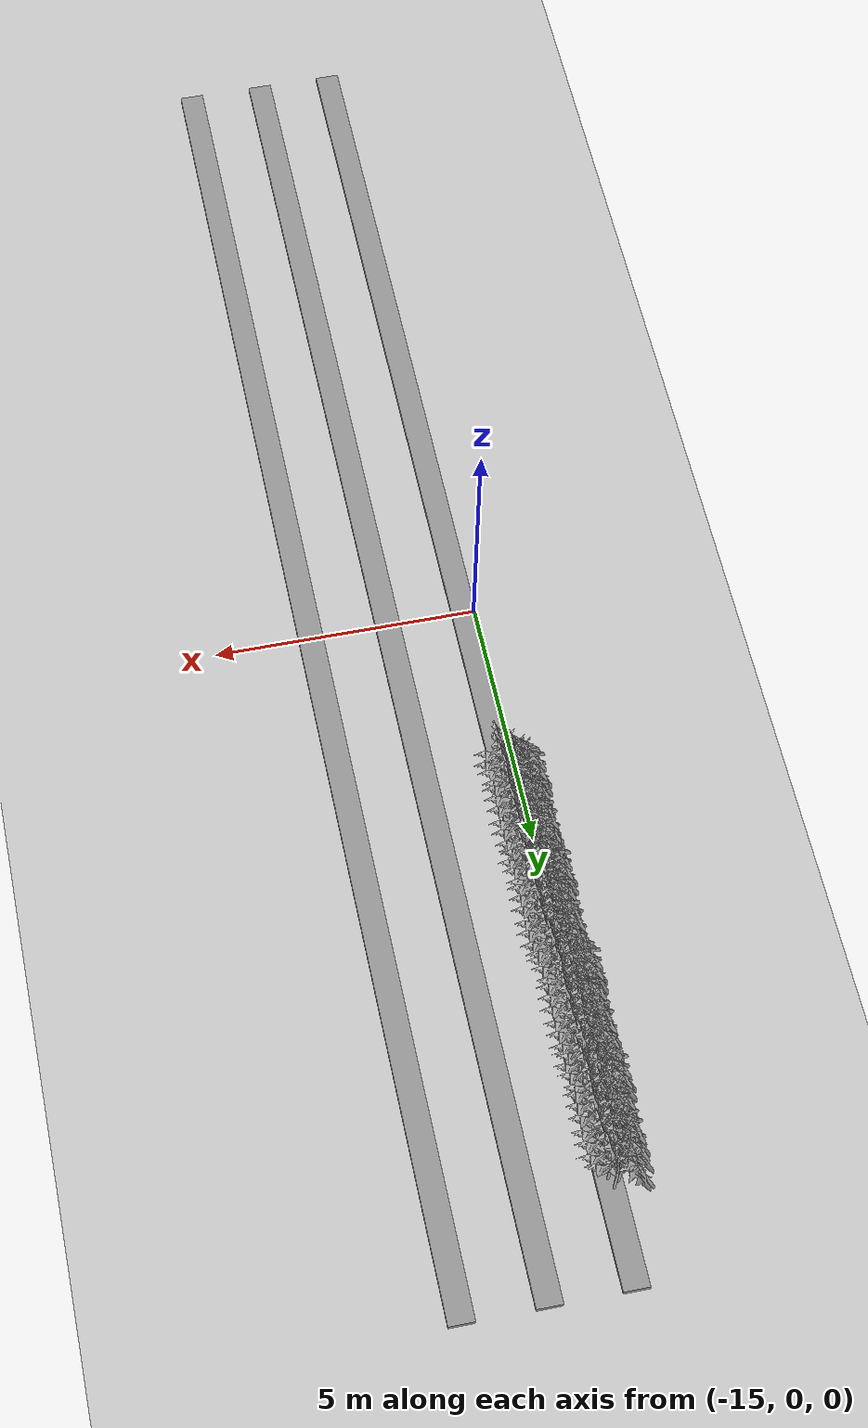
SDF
<sdf version="1.6">
 <world name="default">
  <model name="ground_plane">
   <static>1</static>
   <link name="link">
    <collision name="collision">
     <geometry><plane><normal>0 0 1</normal><size>100 100</size></plane></geometry>
     <surface>
      <contact><collide_bitmask>65535</collide_bitmask></contact>
      <friction><ode><mu>100</mu><mu2>50</mu2></ode></friction>
     </surface>
    </collision>
    <visual name="visual">
     <cast_shadows>0</cast_shadows>
     <geometry><plane><normal>0 0 1</normal><size>100 100</size></plane></geometry>
     <material>
      <script><uri>file://media/materials/scripts/gazebo.material</uri><name>Gazebo/Grey</name></script>
     </material>
    </visual>
   </link>
  </model>
  <model name="Box_24x15W_clone_0">
   <link name="Wall">
    <pose>0 0 0.1985 0 -0 0</pose>
    <inertial>
     <mass>5</mass>
     <inertia><ixx>0.1022</ixx><iyy>0.2197</iyy><izz>0.1905</izz><ixy>0</ixy><ixz>0</ixz><iyz>0</iyz></inertia>
    </inertial>
    <collision name="Wall_Collision">
     <geometry><box><size>0.470639 27.6098 0.091294</size></box></geometry>
    </collision>
    <visual name="Wall_Visual">
     <geometry><box><size>0.470639 27.6098 0.091294</size></box></geometry>
     <material>
      <script><uri>file://media/materials/scripts/gazebo.material</uri><name>Gazebo/Grey</name></script>
      <ambient>1 1 1 1</ambient>
     </material>
    </visual>
   </link>
   <static>1</static>
   <pose>-14.7891 -0.233565 -0.139926 0 -0 0</pose>
  </model>
  <model name="Box_24x15W_clone_1">
   <link name="Wall">
    <pose>0 0 0.1985 0 -0 0</pose>
    <inertial>
     <mass>5</mass>
     <inertia><ixx>0.1022</ixx><iyy>0.2197</iyy><izz>0.1905</izz><ixy>0</ixy><ixz>0</ixz><iyz>0</iyz></inertia>
    </inertial>
    <collision name="Wall_Collision">
     <geometry><box><size>0.470639 27.6098 0.091294</size></box></geometry>
    </collision>
    <visual name="Wall_Visual">
     <geometry><box><size>0.470639 27.6098 0.091294</size></box></geometry>
     <material>
      <script><uri>file://media/materials/scripts/gazebo.material</uri><name>Gazebo/Grey</name></script>
      <ambient>1 1 1 1</ambient>
     </material>
    </visual>
   </link>
   <static>1</static>
   <pose>-13.3102 -0.233565 -0.139926 0 -0 0</pose>
  </model>
  <model name="Box_24x15W_clone_2">
   <link name="Wall">
    <pose>0 0 0.1985 0 -0 0</pose>
    <inertial>
     <mass>5</mass>
     <inertia><ixx>0.1022</ixx><iyy>0.2197</iyy><izz>0.1905</izz><ixy>0</ixy><ixz>0</ixz><iyz>0</iyz></inertia>
    </inertial>
    <collision name="Wall_Collision">
     <geometry><box><size>0.470639 27.6098 0.091294</size></box></geometry>
    </collision>
    <visual name="Wall_Visual">
     <geometry><box><size>0.470639 27.6098 0.091294</size></box></geometry>
     <material>
      <script><uri>file://media/materials/scripts/gazebo.material</uri><name>Gazebo/Grey</name></script>
      <ambient>1 1 1 1</ambient>
     </material>
    </visual>
   </link>
   <static>1</static>
   <pose>-11.8212 -0.233565 -0.139926 0 -0 0</pose>
  </model>
  <model name="MIddle_Plant_3_4">
   <model name="MIddle_Plant_1">
    <model name="tomato_plant_big">
     <static>1</static>
     <link name="link">
      <collision name="collision">
       <pose>0 0 0 1.5708 -0 0</pose>
       <geometry><mesh><scale>0.5 0.6 0.5</scale><uri>model://stick/meshes/stick.dae</uri></mesh></geometry>
      </collision>
      <visual name="visual">
       <geometry>
        <mesh><scale>5e-06 5e-06 7e-06</scale><uri>model://tomato_plant_big/meshes/tomato-plant.dae</uri></mesh>
       </geometry>
      </visual>
     </link>
     <pose>-0.144318 -0.693607 -0 0 -0 0</pose>
    </model>
    <model name="tomato_plant_big_0">
     <static>1</static>
     <link name="link">
      <collision name="collision">
       <pose>0 0 0 1.5708 -0 0</pose>
       <geometry><mesh><scale>0.5 0.6 0.5</scale><uri>model://stick/meshes/stick.dae</uri></mesh></geometry>
      </collision>
      <visual name="visual">
       <geometry>
        <mesh><scale>5e-06 5e-06 7e-06</scale><uri>model://tomato_plant_big/meshes/tomato-plant.dae</uri></mesh>
       </geometry>
      </visual>
     </link>
     <pose>-0.11784 -0.519827 0 0 -0 0</pose>
    </model>
    <model name="tomato_plant_big_1">
     <static>1</static>
     <link name="link">
      <collision name="collision">
       <pose>0 0 0 1.5708 -0 0</pose>
       <geometry><mesh><scale>0.5 0.6 0.5</scale><uri>model://stick/meshes/stick.dae</uri></mesh></geometry>
      </collision>
      <visual name="visual">
       <geometry>
        <mesh><scale>5e-06 5e-06 7e-06</scale><uri>model://tomato_plant_big/meshes/tomato-plant.dae</uri></mesh>
       </geometry>
      </visual>
     </link>
     <pose>0.073755 -0.247584 0 0 -0 0</pose>
    </model>
    <model name="tomato_plant_big_10">
     <static>1</static>
     <link name="link">
      <collision name="collision">
       <pose>0 0 0 1.5708 -0 0</pose>
       <geometry><mesh><scale>0.5 0.6 0.5</scale><uri>model://stick/meshes/stick.dae</uri></mesh></geometry>
      </collision>
      <visual name="visual">
       <geometry>
        <mesh><scale>5e-06 5e-06 7e-06</scale><uri>model://tomato_plant_big/meshes/tomato-plant.dae</uri></mesh>
       </geometry>
      </visual>
     </link>
     <pose>0.037052 1.07094 0 0 -0 0</pose>
    </model>
    <model name="tomato_plant_big_2">
     <static>1</static>
     <link name="link">
      <collision name="collision">
       <pose>0 0 0 1.5708 -0 0</pose>
       <geometry><mesh><scale>0.5 0.6 0.5</scale><uri>model://stick/meshes/stick.dae</uri></mesh></geometry>
      </collision>
      <visual name="visual">
       <geometry>
        <mesh><scale>5e-06 5e-06 7e-06</scale><uri>model://tomato_plant_big/meshes/tomato-plant.dae</uri></mesh>
       </geometry>
      </visual>
     </link>
     <pose>-0.076926 -0.131165 0 0 -0 0</pose>
    </model>
    <model name="tomato_plant_big_3">
     <static>1</static>
     <link name="link">
      <collision name="collision">
       <pose>0 0 0 1.5708 -0 0</pose>
       <geometry><mesh><scale>0.5 0.6 0.5</scale><uri>model://stick/meshes/stick.dae</uri></mesh></geometry>
      </collision>
      <visual name="visual">
       <geometry>
        <mesh><scale>5e-06 5e-06 7e-06</scale><uri>model://tomato_plant_big/meshes/tomato-plant.dae</uri></mesh>
       </geometry>
      </visual>
     </link>
     <pose>0.093714 -0.038386 0 0 -0 0</pose>
    </model>
    <model name="tomato_plant_big_4">
     <static>1</static>
     <link name="link">
      <collision name="collision">
       <pose>0 0 0 1.5708 -0 0</pose>
       <geometry><mesh><scale>0.5 0.6 0.5</scale><uri>model://stick/meshes/stick.dae</uri></mesh></geometry>
      </collision>
      <visual name="visual">
       <geometry>
        <mesh><scale>5e-06 5e-06 7e-06</scale><uri>model://tomato_plant_big/meshes/tomato-plant.dae</uri></mesh>
       </geometry>
      </visual>
     </link>
     <pose>0.103117 0.184356 0 0 -0 0</pose>
    </model>
    <model name="tomato_plant_big_5">
     <static>1</static>
     <link name="link">
      <collision name="collision">
       <pose>0 0 0 1.5708 -0 0</pose>
       <geometry><mesh><scale>0.5 0.6 0.5</scale><uri>model://stick/meshes/stick.dae</uri></mesh></geometry>
      </collision>
      <visual name="visual">
       <geometry>
        <mesh><scale>5e-06 5e-06 7e-06</scale><uri>model://tomato_plant_big/meshes/tomato-plant.dae</uri></mesh>
       </geometry>
      </visual>
     </link>
     <pose>-0.074883 0.301479 0 0 -0 0</pose>
    </model>
    <model name="tomato_plant_big_6">
     <static>1</static>
     <link name="link">
      <collision name="collision">
       <pose>0 0 0 1.5708 -0 0</pose>
       <geometry><mesh><scale>0.5 0.6 0.5</scale><uri>model://stick/meshes/stick.dae</uri></mesh></geometry>
      </collision>
      <visual name="visual">
       <geometry>
        <mesh><scale>5e-06 5e-06 7e-06</scale><uri>model://tomato_plant_big/meshes/tomato-plant.dae</uri></mesh>
       </geometry>
      </visual>
     </link>
     <pose>-0.096921 0.484007 0 0 -0 0</pose>
    </model>
    <model name="tomato_plant_big_7">
     <static>1</static>
     <link name="link">
      <collision name="collision">
       <pose>0 0 0 1.5708 -0 0</pose>
       <geometry><mesh><scale>0.5 0.6 0.5</scale><uri>model://stick/meshes/stick.dae</uri></mesh></geometry>
      </collision>
      <visual name="visual">
       <geometry>
        <mesh><scale>5e-06 5e-06 7e-06</scale><uri>model://tomato_plant_big/meshes/tomato-plant.dae</uri></mesh>
       </geometry>
      </visual>
     </link>
     <pose>0.107491 0.653976 0 0 -0 0</pose>
    </model>
    <model name="tomato_plant_big_8">
     <static>1</static>
     <link name="link">
      <collision name="collision">
       <pose>0 0 0 1.5708 -0 0</pose>
       <geometry><mesh><scale>0.5 0.6 0.5</scale><uri>model://stick/meshes/stick.dae</uri></mesh></geometry>
      </collision>
      <visual name="visual">
       <geometry>
        <mesh><scale>5e-06 5e-06 7e-06</scale><uri>model://tomato_plant_big/meshes/tomato-plant.dae</uri></mesh>
       </geometry>
      </visual>
     </link>
     <pose>-0.07985 0.768549 0 0 -0 0</pose>
    </model>
    <model name="tomato_plant_big_9">
     <static>1</static>
     <link name="link">
      <collision name="collision">
       <pose>0 0 0 1.5708 -0 0</pose>
       <geometry><mesh><scale>0.5 0.6 0.5</scale><uri>model://stick/meshes/stick.dae</uri></mesh></geometry>
      </collision>
      <visual name="visual">
       <geometry>
        <mesh><scale>5e-06 5e-06 7e-06</scale><uri>model://tomato_plant_big/meshes/tomato-plant.dae</uri></mesh>
       </geometry>
      </visual>
     </link>
     <pose>0.098361 0.890852 0 0 -0 0</pose>
    </model>
    <model name="tomato_plant_medium">
     <static>1</static>
     <link name="link">
      <collision name="collision">
       <pose>0 0 0 1.5708 -0 0</pose>
       <geometry><mesh><scale>0.5 0.5 0.5</scale><uri>model://stick/meshes/stick.dae</uri></mesh></geometry>
      </collision>
      <visual name="visual">
       <geometry>
        <mesh><scale>5e-06 5e-06 6e-06</scale><uri>model://tomato_plant_medium/meshes/tomato-plant.dae</uri></mesh>
       </geometry>
      </visual>
     </link>
     <pose>0.056913 -1.05328 0 0 -0 0</pose>
    </model>
    <model name="tomato_plant_medium_0">
     <static>1</static>
     <link name="link">
      <collision name="collision">
       <pose>0 0 0 1.5708 -0 0</pose>
       <geometry><mesh><scale>0.5 0.5 0.5</scale><uri>model://stick/meshes/stick.dae</uri></mesh></geometry>
      </collision>
      <visual name="visual">
       <geometry>
        <mesh><scale>5e-06 5e-06 6e-06</scale><uri>model://tomato_plant_medium/meshes/tomato-plant.dae</uri></mesh>
       </geometry>
      </visual>
     </link>
     <pose>-0.092719 -0.905729 0 0 -0 0</pose>
    </model>
    <model name="tomato_plant_medium_1">
     <static>1</static>
     <link name="link">
      <collision name="collision">
       <pose>0 0 0 1.5708 -0 0</pose>
       <geometry><mesh><scale>0.5 0.5 0.5</scale><uri>model://stick/meshes/stick.dae</uri></mesh></geometry>
      </collision>
      <visual name="visual">
       <geometry>
        <mesh><scale>5e-06 5e-06 6e-06</scale><uri>model://tomato_plant_medium/meshes/tomato-plant.dae</uri></mesh>
       </geometry>
      </visual>
     </link>
     <pose>0.108962 -0.829637 0 0 -0 0</pose>
    </model>
    <model name="tomato_plant_medium_2">
     <static>1</static>
     <link name="link">
      <collision name="collision">
       <pose>0 0 0 1.5708 -0 0</pose>
       <geometry><mesh><scale>0.5 0.5 0.5</scale><uri>model://stick/meshes/stick.dae</uri></mesh></geometry>
      </collision>
      <visual name="visual">
       <geometry>
        <mesh><scale>5e-06 5e-06 6e-06</scale><uri>model://tomato_plant_medium/meshes/tomato-plant.dae</uri></mesh>
       </geometry>
      </visual>
     </link>
     <pose>0.071216 -0.652507 0 0 -0 0</pose>
    </model>
    <model name="tomato_plant_medium_3">
     <static>1</static>
     <link name="link">
      <collision name="collision">
       <pose>0 0 0 1.5708 -0 0</pose>
       <geometry><mesh><scale>0.5 0.5 0.5</scale><uri>model://stick/meshes/stick.dae</uri></mesh></geometry>
      </collision>
      <visual name="visual">
       <geometry>
        <mesh><scale>5e-06 5e-06 6e-06</scale><uri>model://tomato_plant_medium/meshes/tomato-plant.dae</uri></mesh>
       </geometry>
      </visual>
     </link>
     <pose>0.047335 -0.423046 0 0 -0 0</pose>
    </model>
    <model name="tomato_plant_medium_4">
     <static>1</static>
     <link name="link">
      <collision name="collision">
       <pose>0 0 0 1.5708 -0 0</pose>
       <geometry><mesh><scale>0.5 0.5 0.5</scale><uri>model://stick/meshes/stick.dae</uri></mesh></geometry>
      </collision>
      <visual name="visual">
       <geometry>
        <mesh><scale>5e-06 5e-06 6e-06</scale><uri>model://tomato_plant_medium/meshes/tomato-plant.dae</uri></mesh>
       </geometry>
      </visual>
     </link>
     <pose>-0.081012 -0.320324 0 0 -0 0</pose>
    </model>
    <model name="tomato_plant_medium_5">
     <static>1</static>
     <link name="link">
      <collision name="collision">
       <pose>0 0 0 1.5708 -0 0</pose>
       <geometry><mesh><scale>0.5 0.5 0.5</scale><uri>model://stick/meshes/stick.dae</uri></mesh></geometry>
      </collision>
      <visual name="visual">
       <geometry>
        <mesh><scale>5e-06 5e-06 6e-06</scale><uri>model://tomato_plant_medium/meshes/tomato-plant.dae</uri></mesh>
       </geometry>
      </visual>
     </link>
     <pose>-0.07452 0.095988 0 0 -0 0</pose>
    </model>
    <model name="tomato_plant_medium_6">
     <static>1</static>
     <link name="link">
      <collision name="collision">
       <pose>0 0 0 1.5708 -0 0</pose>
       <geometry><mesh><scale>0.5 0.5 0.5</scale><uri>model://stick/meshes/stick.dae</uri></mesh></geometry>
      </collision>
      <visual name="visual">
       <geometry>
        <mesh><scale>5e-06 5e-06 6e-06</scale><uri>model://tomato_plant_medium/meshes/tomato-plant.dae</uri></mesh>
       </geometry>
      </visual>
     </link>
     <pose>0.101424 0.395443 0 0 -0 0</pose>
    </model>
    <model name="tomato_plant_small">
     <static>1</static>
     <link name="link">
      <collision name="collision">
       <pose>0 0 0 1.5708 -0 0</pose>
       <geometry><mesh><scale>0.5 0.45 0.5</scale><uri>model://stick/meshes/stick.dae</uri></mesh></geometry>
      </collision>
      <visual name="visual">
       <geometry>
        <mesh><scale>5e-06 5e-06 5e-06</scale><uri>model://tomato_plant_small/meshes/tomato-plant.dae</uri></mesh>
       </geometry>
      </visual>
     </link>
     <pose>-0.060351 0.969512 0 0 -0 0</pose>
    </model>
    <static>0</static>
    <pose>0.040757 1.77284 0 0 -0 0</pose>
   </model>
   <model name="MIddle_Plant_2">
    <model name="MIddle_Plant_1">
     <model name="tomato_plant_big">
      <static>1</static>
      <link name="link">
       <collision name="collision">
        <pose>0 0 0 1.5708 -0 0</pose>
        <geometry><mesh><scale>0.5 0.6 0.5</scale><uri>model://stick/meshes/stick.dae</uri></mesh></geometry>
       </collision>
       <visual name="visual">
        <geometry>
         <mesh><scale>5e-06 5e-06 7e-06</scale><uri>model://tomato_plant_big/meshes/tomato-plant.dae</uri></mesh>
        </geometry>
       </visual>
      </link>
      <pose>-0.144318 -0.693607 -0 0 -0 0</pose>
     </model>
     <model name="tomato_plant_big_0">
      <static>1</static>
      <link name="link">
       <collision name="collision">
        <pose>0 0 0 1.5708 -0 0</pose>
        <geometry><mesh><scale>0.5 0.6 0.5</scale><uri>model://stick/meshes/stick.dae</uri></mesh></geometry>
       </collision>
       <visual name="visual">
        <geometry>
         <mesh><scale>5e-06 5e-06 7e-06</scale><uri>model://tomato_plant_big/meshes/tomato-plant.dae</uri></mesh>
        </geometry>
       </visual>
      </link>
      <pose>-0.11784 -0.519827 0 0 -0 0</pose>
     </model>
     <model name="tomato_plant_big_1">
      <static>1</static>
      <link name="link">
       <collision name="collision">
        <pose>0 0 0 1.5708 -0 0</pose>
        <geometry><mesh><scale>0.5 0.6 0.5</scale><uri>model://stick/meshes/stick.dae</uri></mesh></geometry>
       </collision>
       <visual name="visual">
        <geometry>
         <mesh><scale>5e-06 5e-06 7e-06</scale><uri>model://tomato_plant_big/meshes/tomato-plant.dae</uri></mesh>
        </geometry>
       </visual>
      </link>
      <pose>0.073755 -0.247584 0 0 -0 0</pose>
     </model>
     <model name="tomato_plant_big_10">
      <static>1</static>
      <link name="link">
       <collision name="collision">
        <pose>0 0 0 1.5708 -0 0</pose>
        <geometry><mesh><scale>0.5 0.6 0.5</scale><uri>model://stick/meshes/stick.dae</uri></mesh></geometry>
       </collision>
       <visual name="visual">
        <geometry>
         <mesh><scale>5e-06 5e-06 7e-06</scale><uri>model://tomato_plant_big/meshes/tomato-plant.dae</uri></mesh>
        </geometry>
       </visual>
      </link>
      <pose>0.037052 1.07094 0 0 -0 0</pose>
     </model>
     <model name="tomato_plant_big_2">
      <static>1</static>
      <link name="link">
       <collision name="collision">
        <pose>0 0 0 1.5708 -0 0</pose>
        <geometry><mesh><scale>0.5 0.6 0.5</scale><uri>model://stick/meshes/stick.dae</uri></mesh></geometry>
       </collision>
       <visual name="visual">
        <geometry>
         <mesh><scale>5e-06 5e-06 7e-06</scale><uri>model://tomato_plant_big/meshes/tomato-plant.dae</uri></mesh>
        </geometry>
       </visual>
      </link>
      <pose>-0.076926 -0.131165 0 0 -0 0</pose>
     </model>
     <model name="tomato_plant_big_3">
      <static>1</static>
      <link name="link">
       <collision name="collision">
        <pose>0 0 0 1.5708 -0 0</pose>
        <geometry><mesh><scale>0.5 0.6 0.5</scale><uri>model://stick/meshes/stick.dae</uri></mesh></geometry>
       </collision>
       <visual name="visual">
        <geometry>
         <mesh><scale>5e-06 5e-06 7e-06</scale><uri>model://tomato_plant_big/meshes/tomato-plant.dae</uri></mesh>
        </geometry>
       </visual>
      </link>
      <pose>0.093714 -0.038386 0 0 -0 0</pose>
     </model>
     <model name="tomato_plant_big_4">
      <static>1</static>
      <link name="link">
       <collision name="collision">
        <pose>0 0 0 1.5708 -0 0</pose>
        <geometry><mesh><scale>0.5 0.6 0.5</scale><uri>model://stick/meshes/stick.dae</uri></mesh></geometry>
       </collision>
       <visual name="visual">
        <geometry>
         <mesh><scale>5e-06 5e-06 7e-06</scale><uri>model://tomato_plant_big/meshes/tomato-plant.dae</uri></mesh>
        </geometry>
       </visual>
      </link>
      <pose>0.103117 0.184356 0 0 -0 0</pose>
     </model>
     <model name="tomato_plant_big_5">
      <static>1</static>
      <link name="link">
       <collision name="collision">
        <pose>0 0 0 1.5708 -0 0</pose>
        <geometry><mesh><scale>0.5 0.6 0.5</scale><uri>model://stick/meshes/stick.dae</uri></mesh></geometry>
       </collision>
       <visual name="visual">
        <geometry>
         <mesh><scale>5e-06 5e-06 7e-06</scale><uri>model://tomato_plant_big/meshes/tomato-plant.dae</uri></mesh>
        </geometry>
       </visual>
      </link>
      <pose>-0.074883 0.301479 0 0 -0 0</pose>
     </model>
     <model name="tomato_plant_big_6">
      <static>1</static>
      <link name="link">
       <collision name="collision">
        <pose>0 0 0 1.5708 -0 0</pose>
        <geometry><mesh><scale>0.5 0.6 0.5</scale><uri>model://stick/meshes/stick.dae</uri></mesh></geometry>
       </collision>
       <visual name="visual">
        <geometry>
         <mesh><scale>5e-06 5e-06 7e-06</scale><uri>model://tomato_plant_big/meshes/tomato-plant.dae</uri></mesh>
        </geometry>
       </visual>
      </link>
      <pose>-0.096921 0.484007 0 0 -0 0</pose>
     </model>
     <model name="tomato_plant_big_7">
      <static>1</static>
      <link name="link">
       <collision name="collision">
        <pose>0 0 0 1.5708 -0 0</pose>
        <geometry><mesh><scale>0.5 0.6 0.5</scale><uri>model://stick/meshes/stick.dae</uri></mesh></geometry>
       </collision>
       <visual name="visual">
        <geometry>
         <mesh><scale>5e-06 5e-06 7e-06</scale><uri>model://tomato_plant_big/meshes/tomato-plant.dae</uri></mesh>
        </geometry>
       </visual>
      </link>
      <pose>0.107491 0.653976 0 0 -0 0</pose>
     </model>
     <model name="tomato_plant_big_8">
      <static>1</static>
      <link name="link">
       <collision name="collision">
        <pose>0 0 0 1.5708 -0 0</pose>
        <geometry><mesh><scale>0.5 0.6 0.5</scale><uri>model://stick/meshes/stick.dae</uri></mesh></geometry>
       </collision>
       <visual name="visual">
        <geometry>
         <mesh><scale>5e-06 5e-06 7e-06</scale><uri>model://tomato_plant_big/meshes/tomato-plant.dae</uri></mesh>
        </geometry>
       </visual>
      </link>
      <pose>-0.07985 0.768549 0 0 -0 0</pose>
     </model>
     <model name="tomato_plant_big_9">
      <static>1</static>
      <link name="link">
       <collision name="collision">
        <pose>0 0 0 1.5708 -0 0</pose>
        <geometry><mesh><scale>0.5 0.6 0.5</scale><uri>model://stick/meshes/stick.dae</uri></mesh></geometry>
       </collision>
       <visual name="visual">
        <geometry>
         <mesh><scale>5e-06 5e-06 7e-06</scale><uri>model://tomato_plant_big/meshes/tomato-plant.dae</uri></mesh>
        </geometry>
       </visual>
      </link>
      <pose>0.098361 0.890852 0 0 -0 0</pose>
     </model>
     <model name="tomato_plant_medium">
      <static>1</static>
      <link name="link">
       <collision name="collision">
        <pose>0 0 0 1.5708 -0 0</pose>
        <geometry><mesh><scale>0.5 0.5 0.5</scale><uri>model://stick/meshes/stick.dae</uri></mesh></geometry>
       </collision>
       <visual name="visual">
        <geometry>
         <mesh><scale>5e-06 5e-06 6e-06</scale><uri>model://tomato_plant_medium/meshes/tomato-plant.dae</uri></mesh>
        </geometry>
       </visual>
      </link>
      <pose>0.056913 -1.05328 0 0 -0 0</pose>
     </model>
     <model name="tomato_plant_medium_0">
      <static>1</static>
      <link name="link">
       <collision name="collision">
        <pose>0 0 0 1.5708 -0 0</pose>
        <geometry><mesh><scale>0.5 0.5 0.5</scale><uri>model://stick/meshes/stick.dae</uri></mesh></geometry>
       </collision>
       <visual name="visual">
        <geometry>
         <mesh><scale>5e-06 5e-06 6e-06</scale><uri>model://tomato_plant_medium/meshes/tomato-plant.dae</uri></mesh>
        </geometry>
       </visual>
      </link>
      <pose>-0.092719 -0.905729 0 0 -0 0</pose>
     </model>
     <model name="tomato_plant_medium_1">
      <static>1</static>
      <link name="link">
       <collision name="collision">
        <pose>0 0 0 1.5708 -0 0</pose>
        <geometry><mesh><scale>0.5 0.5 0.5</scale><uri>model://stick/meshes/stick.dae</uri></mesh></geometry>
       </collision>
       <visual name="visual">
        <geometry>
         <mesh><scale>5e-06 5e-06 6e-06</scale><uri>model://tomato_plant_medium/meshes/tomato-plant.dae</uri></mesh>
        </geometry>
       </visual>
      </link>
      <pose>0.108962 -0.829637 0 0 -0 0</pose>
     </model>
     <model name="tomato_plant_medium_2">
      <static>1</static>
      <link name="link">
       <collision name="collision">
        <pose>0 0 0 1.5708 -0 0</pose>
        <geometry><mesh><scale>0.5 0.5 0.5</scale><uri>model://stick/meshes/stick.dae</uri></mesh></geometry>
       </collision>
       <visual name="visual">
        <geometry>
         <mesh><scale>5e-06 5e-06 6e-06</scale><uri>model://tomato_plant_medium/meshes/tomato-plant.dae</uri></mesh>
        </geometry>
       </visual>
      </link>
      <pose>0.071216 -0.652507 0 0 -0 0</pose>
     </model>
     <model name="tomato_plant_medium_3">
      <static>1</static>
      <link name="link">
       <collision name="collision">
        <pose>0 0 0 1.5708 -0 0</pose>
        <geometry><mesh><scale>0.5 0.5 0.5</scale><uri>model://stick/meshes/stick.dae</uri></mesh></geometry>
       </collision>
       <visual name="visual">
        <geometry>
         <mesh><scale>5e-06 5e-06 6e-06</scale><uri>model://tomato_plant_medium/meshes/tomato-plant.dae</uri></mesh>
        </geometry>
       </visual>
      </link>
      <pose>0.047335 -0.423046 0 0 -0 0</pose>
     </model>
     <model name="tomato_plant_medium_4">
      <static>1</static>
      <link name="link">
       <collision name="collision">
        <pose>0 0 0 1.5708 -0 0</pose>
        <geometry><mesh><scale>0.5 0.5 0.5</scale><uri>model://stick/meshes/stick.dae</uri></mesh></geometry>
       </collision>
       <visual name="visual">
        <geometry>
         <mesh><scale>5e-06 5e-06 6e-06</scale><uri>model://tomato_plant_medium/meshes/tomato-plant.dae</uri></mesh>
        </geometry>
       </visual>
      </link>
      <pose>-0.081012 -0.320324 0 0 -0 0</pose>
     </model>
     <model name="tomato_plant_medium_5">
      <static>1</static>
      <link name="link">
       <collision name="collision">
        <pose>0 0 0 1.5708 -0 0</pose>
        <geometry><mesh><scale>0.5 0.5 0.5</scale><uri>model://stick/meshes/stick.dae</uri></mesh></geometry>
       </collision>
       <visual name="visual">
        <geometry>
         <mesh><scale>5e-06 5e-06 6e-06</scale><uri>model://tomato_plant_medium/meshes/tomato-plant.dae</uri></mesh>
        </geometry>
       </visual>
      </link>
      <pose>-0.07452 0.095988 0 0 -0 0</pose>
     </model>
     <model name="tomato_plant_medium_6">
      <static>1</static>
      <link name="link">
       <collision name="collision">
        <pose>0 0 0 1.5708 -0 0</pose>
        <geometry><mesh><scale>0.5 0.5 0.5</scale><uri>model://stick/meshes/stick.dae</uri></mesh></geometry>
       </collision>
       <visual name="visual">
        <geometry>
         <mesh><scale>5e-06 5e-06 6e-06</scale><uri>model://tomato_plant_medium/meshes/tomato-plant.dae</uri></mesh>
        </geometry>
       </visual>
      </link>
      <pose>0.101424 0.395443 0 0 -0 0</pose>
     </model>
     <model name="tomato_plant_small">
      <static>1</static>
      <link name="link">
       <collision name="collision">
        <pose>0 0 0 1.5708 -0 0</pose>
        <geometry><mesh><scale>0.5 0.45 0.5</scale><uri>model://stick/meshes/stick.dae</uri></mesh></geometry>
       </collision>
       <visual name="visual">
        <geometry>
         <mesh><scale>5e-06 5e-06 5e-06</scale><uri>model://tomato_plant_small/meshes/tomato-plant.dae</uri></mesh>
        </geometry>
       </visual>
      </link>
      <pose>-0.060351 0.969512 0 0 -0 0</pose>
     </model>
     <static>0</static>
     <pose>0.763113 0.028917 0 0 -0 0</pose>
    </model>
    <model name="tomato_plant_big">
     <static>1</static>
     <link name="link">
      <collision name="collision">
       <pose>0 0 0 1.5708 -0 0</pose>
       <geometry><mesh><scale>0.5 0.6 0.5</scale><uri>model://stick/meshes/stick.dae</uri></mesh></geometry>
      </collision>
      <visual name="visual">
       <geometry>
        <mesh><scale>5e-06 5e-06 7e-06</scale><uri>model://tomato_plant_big/meshes/tomato-plant.dae</uri></mesh>
       </geometry>
      </visual>
     </link>
     <pose>0.613724 -2.69399 -0 0 -0 0</pose>
    </model>
    <model name="tomato_plant_big_0">
     <static>1</static>
     <link name="link">
      <collision name="collision">
       <pose>0 0 0 1.5708 -0 0</pose>
       <geometry><mesh><scale>0.5 0.6 0.5</scale><uri>model://stick/meshes/stick.dae</uri></mesh></geometry>
      </collision>
      <visual name="visual">
       <geometry>
        <mesh><scale>5e-06 5e-06 7e-06</scale><uri>model://tomato_plant_big/meshes/tomato-plant.dae</uri></mesh>
       </geometry>
      </visual>
     </link>
     <pose>0.640202 -2.52021 0 0 -0 0</pose>
    </model>
    <model name="tomato_plant_big_1">
     <static>1</static>
     <link name="link">
      <collision name="collision">
       <pose>0 0 0 1.5708 -0 0</pose>
       <geometry><mesh><scale>0.5 0.6 0.5</scale><uri>model://stick/meshes/stick.dae</uri></mesh></geometry>
      </collision>
      <visual name="visual">
       <geometry>
        <mesh><scale>5e-06 5e-06 7e-06</scale><uri>model://tomato_plant_big/meshes/tomato-plant.dae</uri></mesh>
       </geometry>
      </visual>
     </link>
     <pose>0.831797 -2.24797 0 0 -0 0</pose>
    </model>
    <model name="tomato_plant_big_10">
     <static>1</static>
     <link name="link">
      <collision name="collision">
       <pose>0 0 0 1.5708 -0 0</pose>
       <geometry><mesh><scale>0.5 0.6 0.5</scale><uri>model://stick/meshes/stick.dae</uri></mesh></geometry>
      </collision>
      <visual name="visual">
       <geometry>
        <mesh><scale>5e-06 5e-06 7e-06</scale><uri>model://tomato_plant_big/meshes/tomato-plant.dae</uri></mesh>
       </geometry>
      </visual>
     </link>
     <pose>0.795094 -0.929446 0 0 -0 0</pose>
    </model>
    <model name="tomato_plant_big_2">
     <static>1</static>
     <link name="link">
      <collision name="collision">
       <pose>0 0 0 1.5708 -0 0</pose>
       <geometry><mesh><scale>0.5 0.6 0.5</scale><uri>model://stick/meshes/stick.dae</uri></mesh></geometry>
      </collision>
      <visual name="visual">
       <geometry>
        <mesh><scale>5e-06 5e-06 7e-06</scale><uri>model://tomato_plant_big/meshes/tomato-plant.dae</uri></mesh>
       </geometry>
      </visual>
     </link>
     <pose>0.681116 -2.13155 0 0 -0 0</pose>
    </model>
    <model name="tomato_plant_big_3">
     <static>1</static>
     <link name="link">
      <collision name="collision">
       <pose>0 0 0 1.5708 -0 0</pose>
       <geometry><mesh><scale>0.5 0.6 0.5</scale><uri>model://stick/meshes/stick.dae</uri></mesh></geometry>
      </collision>
      <visual name="visual">
       <geometry>
        <mesh><scale>5e-06 5e-06 7e-06</scale><uri>model://tomato_plant_big/meshes/tomato-plant.dae</uri></mesh>
       </geometry>
      </visual>
     </link>
     <pose>0.851755 -2.03877 0 0 -0 0</pose>
    </model>
    <model name="tomato_plant_big_4">
     <static>1</static>
     <link name="link">
      <collision name="collision">
       <pose>0 0 0 1.5708 -0 0</pose>
       <geometry><mesh><scale>0.5 0.6 0.5</scale><uri>model://stick/meshes/stick.dae</uri></mesh></geometry>
      </collision>
      <visual name="visual">
       <geometry>
        <mesh><scale>5e-06 5e-06 7e-06</scale><uri>model://tomato_plant_big/meshes/tomato-plant.dae</uri></mesh>
       </geometry>
      </visual>
     </link>
     <pose>0.861158 -1.81603 0 0 -0 0</pose>
    </model>
    <model name="tomato_plant_big_5">
     <static>1</static>
     <link name="link">
      <collision name="collision">
       <pose>0 0 0 1.5708 -0 0</pose>
       <geometry><mesh><scale>0.5 0.6 0.5</scale><uri>model://stick/meshes/stick.dae</uri></mesh></geometry>
      </collision>
      <visual name="visual">
       <geometry>
        <mesh><scale>5e-06 5e-06 7e-06</scale><uri>model://tomato_plant_big/meshes/tomato-plant.dae</uri></mesh>
       </geometry>
      </visual>
     </link>
     <pose>0.683158 -1.69891 0 0 -0 0</pose>
    </model>
    <model name="tomato_plant_big_6">
     <static>1</static>
     <link name="link">
      <collision name="collision">
       <pose>0 0 0 1.5708 -0 0</pose>
       <geometry><mesh><scale>0.5 0.6 0.5</scale><uri>model://stick/meshes/stick.dae</uri></mesh></geometry>
      </collision>
      <visual name="visual">
       <geometry>
        <mesh><scale>5e-06 5e-06 7e-06</scale><uri>model://tomato_plant_big/meshes/tomato-plant.dae</uri></mesh>
       </geometry>
      </visual>
     </link>
     <pose>0.66112 -1.51638 0 0 -0 0</pose>
    </model>
    <model name="tomato_plant_big_7">
     <static>1</static>
     <link name="link">
      <collision name="collision">
       <pose>0 0 0 1.5708 -0 0</pose>
       <geometry><mesh><scale>0.5 0.6 0.5</scale><uri>model://stick/meshes/stick.dae</uri></mesh></geometry>
      </collision>
      <visual name="visual">
       <geometry>
        <mesh><scale>5e-06 5e-06 7e-06</scale><uri>model://tomato_plant_big/meshes/tomato-plant.dae</uri></mesh>
       </geometry>
      </visual>
     </link>
     <pose>0.865532 -1.34641 0 0 -0 0</pose>
    </model>
    <model name="tomato_plant_big_8">
     <static>1</static>
     <link name="link">
      <collision name="collision">
       <pose>0 0 0 1.5708 -0 0</pose>
       <geometry><mesh><scale>0.5 0.6 0.5</scale><uri>model://stick/meshes/stick.dae</uri></mesh></geometry>
      </collision>
      <visual name="visual">
       <geometry>
        <mesh><scale>5e-06 5e-06 7e-06</scale><uri>model://tomato_plant_big/meshes/tomato-plant.dae</uri></mesh>
       </geometry>
      </visual>
     </link>
     <pose>0.678192 -1.23184 0 0 -0 0</pose>
    </model>
    <model name="tomato_plant_big_9">
     <static>1</static>
     <link name="link">
      <collision name="collision">
       <pose>0 0 0 1.5708 -0 0</pose>
       <geometry><mesh><scale>0.5 0.6 0.5</scale><uri>model://stick/meshes/stick.dae</uri></mesh></geometry>
      </collision>
      <visual name="visual">
       <geometry>
        <mesh><scale>5e-06 5e-06 7e-06</scale><uri>model://tomato_plant_big/meshes/tomato-plant.dae</uri></mesh>
       </geometry>
      </visual>
     </link>
     <pose>0.856402 -1.10953 0 0 -0 0</pose>
    </model>
    <model name="tomato_plant_medium">
     <static>1</static>
     <link name="link">
      <collision name="collision">
       <pose>0 0 0 1.5708 -0 0</pose>
       <geometry><mesh><scale>0.5 0.5 0.5</scale><uri>model://stick/meshes/stick.dae</uri></mesh></geometry>
      </collision>
      <visual name="visual">
       <geometry>
        <mesh><scale>5e-06 5e-06 6e-06</scale><uri>model://tomato_plant_medium/meshes/tomato-plant.dae</uri></mesh>
       </geometry>
      </visual>
     </link>
     <pose>0.814955 -3.05367 0 0 -0 0</pose>
    </model>
    <model name="tomato_plant_medium_0">
     <static>1</static>
     <link name="link">
      <collision name="collision">
       <pose>0 0 0 1.5708 -0 0</pose>
       <geometry><mesh><scale>0.5 0.5 0.5</scale><uri>model://stick/meshes/stick.dae</uri></mesh></geometry>
      </collision>
      <visual name="visual">
       <geometry>
        <mesh><scale>5e-06 5e-06 6e-06</scale><uri>model://tomato_plant_medium/meshes/tomato-plant.dae</uri></mesh>
       </geometry>
      </visual>
     </link>
     <pose>0.665322 -2.90611 0 0 -0 0</pose>
    </model>
    <model name="tomato_plant_medium_1">
     <static>1</static>
     <link name="link">
      <collision name="collision">
       <pose>0 0 0 1.5708 -0 0</pose>
       <geometry><mesh><scale>0.5 0.5 0.5</scale><uri>model://stick/meshes/stick.dae</uri></mesh></geometry>
      </collision>
      <visual name="visual">
       <geometry>
        <mesh><scale>5e-06 5e-06 6e-06</scale><uri>model://tomato_plant_medium/meshes/tomato-plant.dae</uri></mesh>
       </geometry>
      </visual>
     </link>
     <pose>0.867004 -2.83002 0 0 -0 0</pose>
    </model>
    <model name="tomato_plant_medium_2">
     <static>1</static>
     <link name="link">
      <collision name="collision">
       <pose>0 0 0 1.5708 -0 0</pose>
       <geometry><mesh><scale>0.5 0.5 0.5</scale><uri>model://stick/meshes/stick.dae</uri></mesh></geometry>
      </collision>
      <visual name="visual">
       <geometry>
        <mesh><scale>5e-06 5e-06 6e-06</scale><uri>model://tomato_plant_medium/meshes/tomato-plant.dae</uri></mesh>
       </geometry>
      </visual>
     </link>
     <pose>0.829257 -2.65289 0 0 -0 0</pose>
    </model>
    <model name="tomato_plant_medium_3">
     <static>1</static>
     <link name="link">
      <collision name="collision">
       <pose>0 0 0 1.5708 -0 0</pose>
       <geometry><mesh><scale>0.5 0.5 0.5</scale><uri>model://stick/meshes/stick.dae</uri></mesh></geometry>
      </collision>
      <visual name="visual">
       <geometry>
        <mesh><scale>5e-06 5e-06 6e-06</scale><uri>model://tomato_plant_medium/meshes/tomato-plant.dae</uri></mesh>
       </geometry>
      </visual>
     </link>
     <pose>0.805376 -2.42343 0 0 -0 0</pose>
    </model>
    <model name="tomato_plant_medium_4">
     <static>1</static>
     <link name="link">
      <collision name="collision">
       <pose>0 0 0 1.5708 -0 0</pose>
       <geometry><mesh><scale>0.5 0.5 0.5</scale><uri>model://stick/meshes/stick.dae</uri></mesh></geometry>
      </collision>
      <visual name="visual">
       <geometry>
        <mesh><scale>5e-06 5e-06 6e-06</scale><uri>model://tomato_plant_medium/meshes/tomato-plant.dae</uri></mesh>
       </geometry>
      </visual>
     </link>
     <pose>0.67703 -2.32071 0 0 -0 0</pose>
    </model>
    <model name="tomato_plant_medium_5">
     <static>1</static>
     <link name="link">
      <collision name="collision">
       <pose>0 0 0 1.5708 -0 0</pose>
       <geometry><mesh><scale>0.5 0.5 0.5</scale><uri>model://stick/meshes/stick.dae</uri></mesh></geometry>
      </collision>
      <visual name="visual">
       <geometry>
        <mesh><scale>5e-06 5e-06 6e-06</scale><uri>model://tomato_plant_medium/meshes/tomato-plant.dae</uri></mesh>
       </geometry>
      </visual>
     </link>
     <pose>0.683522 -1.9044 0 0 -0 0</pose>
    </model>
    <model name="tomato_plant_medium_6">
     <static>1</static>
     <link name="link">
      <collision name="collision">
       <pose>0 0 0 1.5708 -0 0</pose>
       <geometry><mesh><scale>0.5 0.5 0.5</scale><uri>model://stick/meshes/stick.dae</uri></mesh></geometry>
      </collision>
      <visual name="visual">
       <geometry>
        <mesh><scale>5e-06 5e-06 6e-06</scale><uri>model://tomato_plant_medium/meshes/tomato-plant.dae</uri></mesh>
       </geometry>
      </visual>
     </link>
     <pose>0.859466 -1.60494 0 0 -0 0</pose>
    </model>
    <model name="tomato_plant_small">
     <static>1</static>
     <link name="link">
      <collision name="collision">
       <pose>0 0 0 1.5708 -0 0</pose>
       <geometry><mesh><scale>0.5 0.45 0.5</scale><uri>model://stick/meshes/stick.dae</uri></mesh></geometry>
      </collision>
      <visual name="visual">
       <geometry>
        <mesh><scale>5e-06 5e-06 5e-06</scale><uri>model://tomato_plant_small/meshes/tomato-plant.dae</uri></mesh>
       </geometry>
      </visual>
     </link>
     <pose>0.697691 -1.03087 0 0 -0 0</pose>
    </model>
    <static>0</static>
    <pose>-0.78485 5.73439 0 0 -0 0</pose>
   </model>
   <model name="tomato_plant_big">
    <static>1</static>
    <link name="link">
     <collision name="collision">
      <pose>0 0 0 1.5708 -0 0</pose>
      <geometry><mesh><scale>0.5 0.6 0.5</scale><uri>model://stick/meshes/stick.dae</uri></mesh></geometry>
     </collision>
     <visual name="visual">
      <geometry>
       <mesh><scale>5e-06 5e-06 7e-06</scale><uri>model://tomato_plant_big/meshes/tomato-plant.dae</uri></mesh>
      </geometry>
     </visual>
    </link>
    <pose>-0.108632 -0.950068 -0 0 -0 0</pose>
   </model>
   <model name="tomato_plant_big_0">
    <static>1</static>
    <link name="link">
     <collision name="collision">
      <pose>0 0 0 1.5708 -0 0</pose>
      <geometry><mesh><scale>0.5 0.6 0.5</scale><uri>model://stick/meshes/stick.dae</uri></mesh></geometry>
     </collision>
     <visual name="visual">
      <geometry>
       <mesh><scale>5e-06 5e-06 7e-06</scale><uri>model://tomato_plant_big/meshes/tomato-plant.dae</uri></mesh>
      </geometry>
     </visual>
    </link>
    <pose>-0.082154 -0.776288 0 0 -0 0</pose>
   </model>
   <model name="tomato_plant_big_1">
    <static>1</static>
    <link name="link">
     <collision name="collision">
      <pose>0 0 0 1.5708 -0 0</pose>
      <geometry><mesh><scale>0.5 0.6 0.5</scale><uri>model://stick/meshes/stick.dae</uri></mesh></geometry>
     </collision>
     <visual name="visual">
      <geometry>
       <mesh><scale>5e-06 5e-06 7e-06</scale><uri>model://tomato_plant_big/meshes/tomato-plant.dae</uri></mesh>
      </geometry>
     </visual>
    </link>
    <pose>0.109441 -0.504045 0 0 -0 0</pose>
   </model>
   <model name="tomato_plant_big_10">
    <static>1</static>
    <link name="link">
     <collision name="collision">
      <pose>0 0 0 1.5708 -0 0</pose>
      <geometry><mesh><scale>0.5 0.6 0.5</scale><uri>model://stick/meshes/stick.dae</uri></mesh></geometry>
     </collision>
     <visual name="visual">
      <geometry>
       <mesh><scale>5e-06 5e-06 7e-06</scale><uri>model://tomato_plant_big/meshes/tomato-plant.dae</uri></mesh>
      </geometry>
     </visual>
    </link>
    <pose>0.072738 0.814477 0 0 -0 0</pose>
   </model>
   <model name="tomato_plant_big_2">
    <static>1</static>
    <link name="link">
     <collision name="collision">
      <pose>0 0 0 1.5708 -0 0</pose>
      <geometry><mesh><scale>0.5 0.6 0.5</scale><uri>model://stick/meshes/stick.dae</uri></mesh></geometry>
     </collision>
     <visual name="visual">
      <geometry>
       <mesh><scale>5e-06 5e-06 7e-06</scale><uri>model://tomato_plant_big/meshes/tomato-plant.dae</uri></mesh>
      </geometry>
     </visual>
    </link>
    <pose>-0.04124 -0.387626 0 0 -0 0</pose>
   </model>
   <model name="tomato_plant_big_3">
    <static>1</static>
    <link name="link">
     <collision name="collision">
      <pose>0 0 0 1.5708 -0 0</pose>
      <geometry><mesh><scale>0.5 0.6 0.5</scale><uri>model://stick/meshes/stick.dae</uri></mesh></geometry>
     </collision>
     <visual name="visual">
      <geometry>
       <mesh><scale>5e-06 5e-06 7e-06</scale><uri>model://tomato_plant_big/meshes/tomato-plant.dae</uri></mesh>
      </geometry>
     </visual>
    </link>
    <pose>0.129399 -0.294847 0 0 -0 0</pose>
   </model>
   <model name="tomato_plant_big_4">
    <static>1</static>
    <link name="link">
     <collision name="collision">
      <pose>0 0 0 1.5708 -0 0</pose>
      <geometry><mesh><scale>0.5 0.6 0.5</scale><uri>model://stick/meshes/stick.dae</uri></mesh></geometry>
     </collision>
     <visual name="visual">
      <geometry>
       <mesh><scale>5e-06 5e-06 7e-06</scale><uri>model://tomato_plant_big/meshes/tomato-plant.dae</uri></mesh>
      </geometry>
     </visual>
    </link>
    <pose>0.138802 -0.072105 0 0 -0 0</pose>
   </model>
   <model name="tomato_plant_big_5">
    <static>1</static>
    <link name="link">
     <collision name="collision">
      <pose>0 0 0 1.5708 -0 0</pose>
      <geometry><mesh><scale>0.5 0.6 0.5</scale><uri>model://stick/meshes/stick.dae</uri></mesh></geometry>
     </collision>
     <visual name="visual">
      <geometry>
       <mesh><scale>5e-06 5e-06 7e-06</scale><uri>model://tomato_plant_big/meshes/tomato-plant.dae</uri></mesh>
      </geometry>
     </visual>
    </link>
    <pose>-0.039198 0.045018 0 0 -0 0</pose>
   </model>
   <model name="tomato_plant_big_6">
    <static>1</static>
    <link name="link">
     <collision name="collision">
      <pose>0 0 0 1.5708 -0 0</pose>
      <geometry><mesh><scale>0.5 0.6 0.5</scale><uri>model://stick/meshes/stick.dae</uri></mesh></geometry>
     </collision>
     <visual name="visual">
      <geometry>
       <mesh><scale>5e-06 5e-06 7e-06</scale><uri>model://tomato_plant_big/meshes/tomato-plant.dae</uri></mesh>
      </geometry>
     </visual>
    </link>
    <pose>-0.061236 0.227546 0 0 -0 0</pose>
   </model>
   <model name="tomato_plant_big_7">
    <static>1</static>
    <link name="link">
     <collision name="collision">
      <pose>0 0 0 1.5708 -0 0</pose>
      <geometry><mesh><scale>0.5 0.6 0.5</scale><uri>model://stick/meshes/stick.dae</uri></mesh></geometry>
     </collision>
     <visual name="visual">
      <geometry>
       <mesh><scale>5e-06 5e-06 7e-06</scale><uri>model://tomato_plant_big/meshes/tomato-plant.dae</uri></mesh>
      </geometry>
     </visual>
    </link>
    <pose>0.143176 0.397515 0 0 -0 0</pose>
   </model>
   <model name="tomato_plant_big_8">
    <static>1</static>
    <link name="link">
     <collision name="collision">
      <pose>0 0 0 1.5708 -0 0</pose>
      <geometry><mesh><scale>0.5 0.6 0.5</scale><uri>model://stick/meshes/stick.dae</uri></mesh></geometry>
     </collision>
     <visual name="visual">
      <geometry>
       <mesh><scale>5e-06 5e-06 7e-06</scale><uri>model://tomato_plant_big/meshes/tomato-plant.dae</uri></mesh>
      </geometry>
     </visual>
    </link>
    <pose>-0.044164 0.512088 0 0 -0 0</pose>
   </model>
   <model name="tomato_plant_big_9">
    <static>1</static>
    <link name="link">
     <collision name="collision">
      <pose>0 0 0 1.5708 -0 0</pose>
      <geometry><mesh><scale>0.5 0.6 0.5</scale><uri>model://stick/meshes/stick.dae</uri></mesh></geometry>
     </collision>
     <visual name="visual">
      <geometry>
       <mesh><scale>5e-06 5e-06 7e-06</scale><uri>model://tomato_plant_big/meshes/tomato-plant.dae</uri></mesh>
      </geometry>
     </visual>
    </link>
    <pose>0.134046 0.634391 0 0 -0 0</pose>
   </model>
   <model name="tomato_plant_medium">
    <static>1</static>
    <link name="link">
     <collision name="collision">
      <pose>0 0 0 1.5708 -0 0</pose>
      <geometry><mesh><scale>0.5 0.5 0.5</scale><uri>model://stick/meshes/stick.dae</uri></mesh></geometry>
     </collision>
     <visual name="visual">
      <geometry>
       <mesh><scale>5e-06 5e-06 6e-06</scale><uri>model://tomato_plant_medium/meshes/tomato-plant.dae</uri></mesh>
      </geometry>
     </visual>
    </link>
    <pose>0.092599 -1.30974 0 0 -0 0</pose>
   </model>
   <model name="tomato_plant_medium_0">
    <static>1</static>
    <link name="link">
     <collision name="collision">
      <pose>0 0 0 1.5708 -0 0</pose>
      <geometry><mesh><scale>0.5 0.5 0.5</scale><uri>model://stick/meshes/stick.dae</uri></mesh></geometry>
     </collision>
     <visual name="visual">
      <geometry>
       <mesh><scale>5e-06 5e-06 6e-06</scale><uri>model://tomato_plant_medium/meshes/tomato-plant.dae</uri></mesh>
      </geometry>
     </visual>
    </link>
    <pose>-0.057034 -1.16219 0 0 -0 0</pose>
   </model>
   <model name="tomato_plant_medium_1">
    <static>1</static>
    <link name="link">
     <collision name="collision">
      <pose>0 0 0 1.5708 -0 0</pose>
      <geometry><mesh><scale>0.5 0.5 0.5</scale><uri>model://stick/meshes/stick.dae</uri></mesh></geometry>
     </collision>
     <visual name="visual">
      <geometry>
       <mesh><scale>5e-06 5e-06 6e-06</scale><uri>model://tomato_plant_medium/meshes/tomato-plant.dae</uri></mesh>
      </geometry>
     </visual>
    </link>
    <pose>0.144648 -1.0861 0 0 -0 0</pose>
   </model>
   <model name="tomato_plant_medium_2">
    <static>1</static>
    <link name="link">
     <collision name="collision">
      <pose>0 0 0 1.5708 -0 0</pose>
      <geometry><mesh><scale>0.5 0.5 0.5</scale><uri>model://stick/meshes/stick.dae</uri></mesh></geometry>
     </collision>
     <visual name="visual">
      <geometry>
       <mesh><scale>5e-06 5e-06 6e-06</scale><uri>model://tomato_plant_medium/meshes/tomato-plant.dae</uri></mesh>
      </geometry>
     </visual>
    </link>
    <pose>0.106901 -0.908968 0 0 -0 0</pose>
   </model>
   <model name="tomato_plant_medium_3">
    <static>1</static>
    <link name="link">
     <collision name="collision">
      <pose>0 0 0 1.5708 -0 0</pose>
      <geometry><mesh><scale>0.5 0.5 0.5</scale><uri>model://stick/meshes/stick.dae</uri></mesh></geometry>
     </collision>
     <visual name="visual">
      <geometry>
       <mesh><scale>5e-06 5e-06 6e-06</scale><uri>model://tomato_plant_medium/meshes/tomato-plant.dae</uri></mesh>
      </geometry>
     </visual>
    </link>
    <pose>0.08302 -0.679508 0 0 -0 0</pose>
   </model>
   <model name="tomato_plant_medium_4">
    <static>1</static>
    <link name="link">
     <collision name="collision">
      <pose>0 0 0 1.5708 -0 0</pose>
      <geometry><mesh><scale>0.5 0.5 0.5</scale><uri>model://stick/meshes/stick.dae</uri></mesh></geometry>
     </collision>
     <visual name="visual">
      <geometry>
       <mesh><scale>5e-06 5e-06 6e-06</scale><uri>model://tomato_plant_medium/meshes/tomato-plant.dae</uri></mesh>
      </geometry>
     </visual>
    </link>
    <pose>-0.045326 -0.576785 0 0 -0 0</pose>
   </model>
   <model name="tomato_plant_medium_5">
    <static>1</static>
    <link name="link">
     <collision name="collision">
      <pose>0 0 0 1.5708 -0 0</pose>
      <geometry><mesh><scale>0.5 0.5 0.5</scale><uri>model://stick/meshes/stick.dae</uri></mesh></geometry>
     </collision>
     <visual name="visual">
      <geometry>
       <mesh><scale>5e-06 5e-06 6e-06</scale><uri>model://tomato_plant_medium/meshes/tomato-plant.dae</uri></mesh>
      </geometry>
     </visual>
    </link>
    <pose>-0.038834 -0.160473 0 0 -0 0</pose>
   </model>
   <model name="tomato_plant_medium_6">
    <static>1</static>
    <link name="link">
     <collision name="collision">
      <pose>0 0 0 1.5708 -0 0</pose>
      <geometry><mesh><scale>0.5 0.5 0.5</scale><uri>model://stick/meshes/stick.dae</uri></mesh></geometry>
     </collision>
     <visual name="visual">
      <geometry>
       <mesh><scale>5e-06 5e-06 6e-06</scale><uri>model://tomato_plant_medium/meshes/tomato-plant.dae</uri></mesh>
      </geometry>
     </visual>
    </link>
    <pose>0.13711 0.138982 0 0 -0 0</pose>
   </model>
   <model name="tomato_plant_small">
    <static>1</static>
    <link name="link">
     <collision name="collision">
      <pose>0 0 0 1.5708 -0 0</pose>
      <geometry><mesh><scale>0.5 0.45 0.5</scale><uri>model://stick/meshes/stick.dae</uri></mesh></geometry>
     </collision>
     <visual name="visual">
      <geometry>
       <mesh><scale>5e-06 5e-06 5e-06</scale><uri>model://tomato_plant_small/meshes/tomato-plant.dae</uri></mesh>
      </geometry>
     </visual>
    </link>
    <pose>-0.024665 0.713051 0 0 -0 0</pose>
   </model>
   <static>0</static>
   <pose>-14.846 4.92176 0 0 -0 0</pose>
  </model>
 </world>
</sdf>
